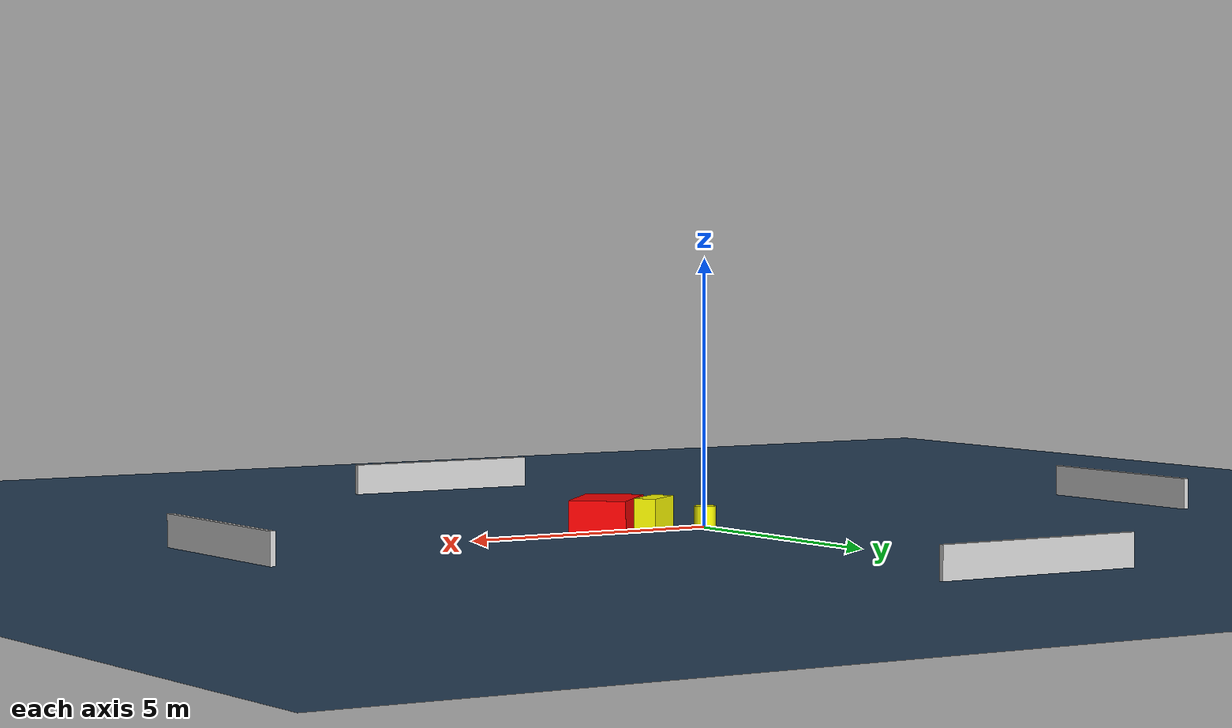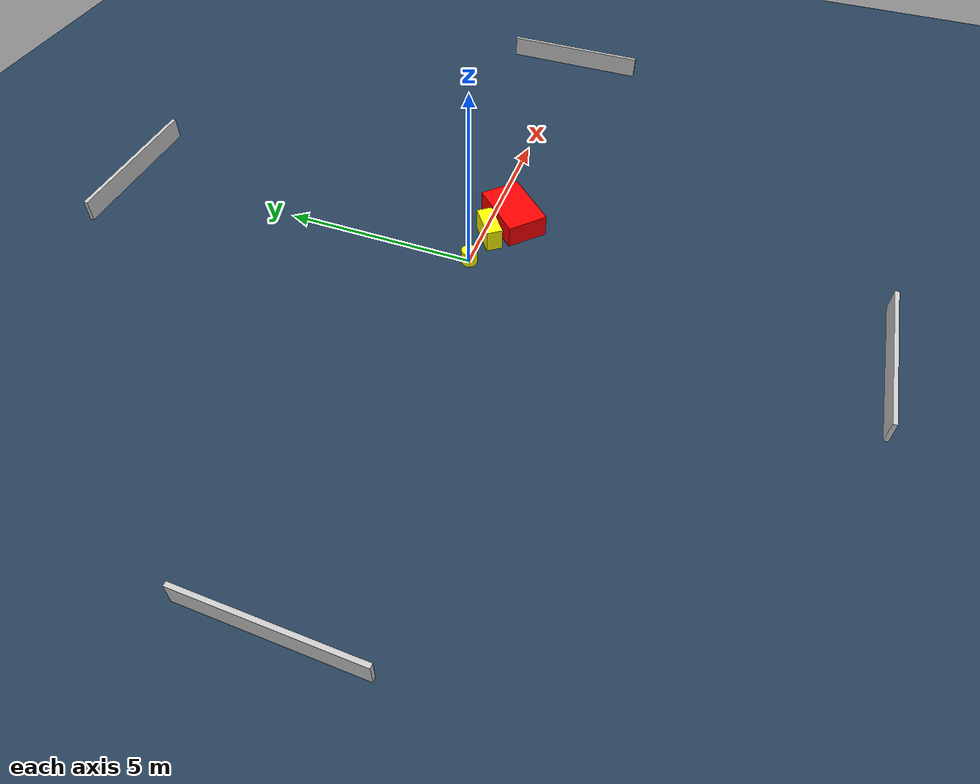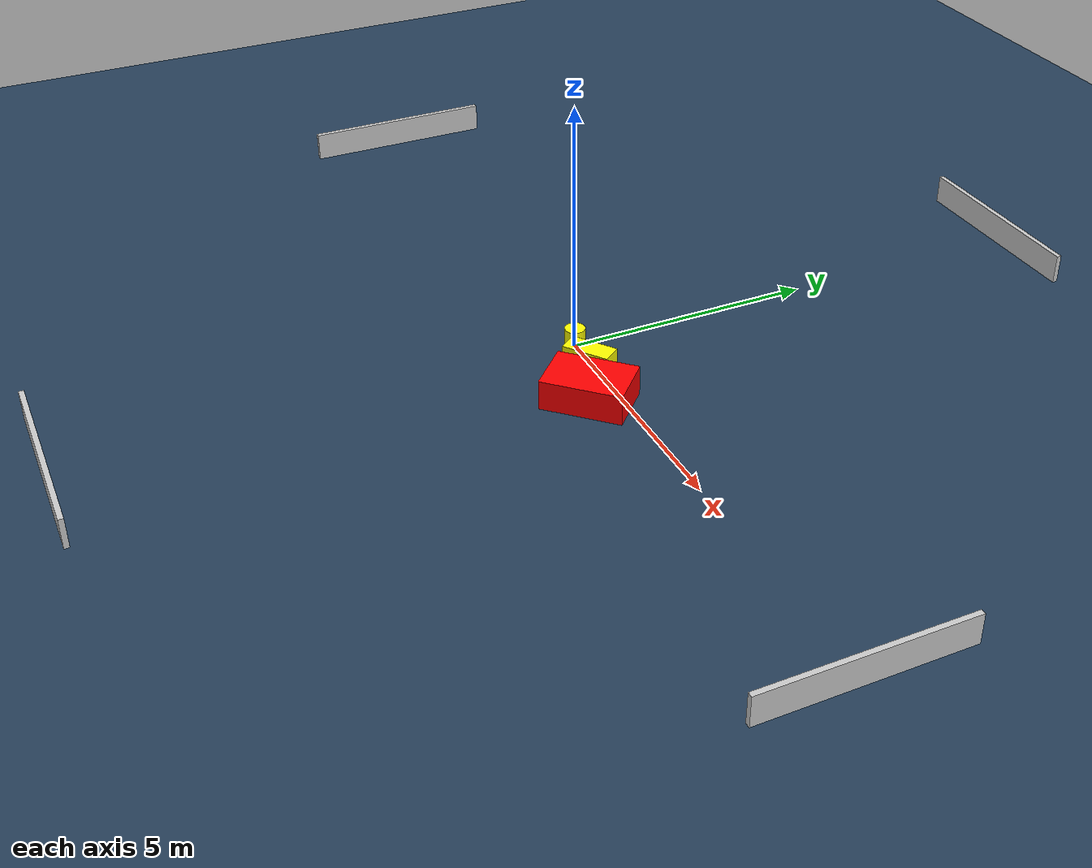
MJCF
<?xml version="1.0" ?>
<mujoco model="generated_environment">
  <option timestep="0.01" integrator="RK4" cone="elliptic"/>
  <default>
    <geom density="1"/>
  </default>
  <asset>
    <texture builtin="gradient" height="3072" name="skybox" rgb1="0.3 0.5 0.7" rgb2="0 0 0" type="skybox" width="512"/>
    <texture builtin="checker" height="300" name="groundplane" rgb1="0.2 0.3 0.4" rgb2="0.1 0.2 0.3" type="2d" width="300"/>
    <material name="groundplane" reflectance="0.2" texrepeat="5 5" texture="groundplane"/>
  </asset>
  <worldbody>
    <light dir="0 0 -1" directional="true" pos="0 0 1.5"/>
    <geom condim="3" friction="0.5 0.005 0.001" material="groundplane" name="floor" pos="0 0 0" size="0 0 0.05" type="plane"/>
    <body name="walls">
      <geom name="wall_1" condim="4" pos="-10.0 0.0 0.3" rgba="0.800000011920929 0.800000011920929 0.800000011920929 1.0" size="0.05 2.0 0.3" type="box"/>
      <geom name="wall_2" condim="4" pos="10.0 0.0 0.3" rgba="0.800000011920929 0.800000011920929 0.800000011920929 1.0" size="0.05 2.0 0.3" type="box"/>
      <geom name="wall_3" condim="4" pos="0.0 -10.0 0.3" rgba="0.800000011920929 0.800000011920929 0.800000011920929 1.0" size="2.0 0.05 0.3" type="box"/>
      <geom name="wall_4" condim="4" pos="0.0 10.0 0.3" rgba="0.800000011920929 0.800000011920929 0.800000011920929 1.0" size="2.0 0.05 0.3" type="box"/>
    </body>
    <body name="robot">
      <joint name="joint_x" type="slide" pos="0 0 0" axis="1 0 0"/>
      <joint name="joint_y" type="slide" pos="0 0 0" axis="0 1 0"/>
      <geom name="robot" type="cylinder" pos="0.0 0.0 0.2" size="0.2 0.2 0.0" mass="5.0" friction="1.0 0.005 0.0001" condim="4" rgba="1.0 1.0 0.0 1.0"/>
    </body>
    <body name="obstacle_1_movable">
      <geom name="obstacle_1_movable" condim="4" pos="1.0224149255085933 -0.17537916106712073 0.3" euler="0 0 36.32707662305192" friction="0.0 0.005 0.001" rgba="1.0 1.0 0.0 1.0" size="0.46923167845782127 0.20520789132104045 0.3" type="box" mass="0.1"/>
      <joint type="free"/>
    </body>
    <body name="obstacle_2_static">
      <geom name="obstacle_2_static" condim="4" pos="1.8206109241681234 -0.5608043954278643 0.3" euler="0 0 225.9809436502588" friction="0.0 0.005 0.001" rgba="1.0 0.0 0.0 1.0" size="0.7977292584102897 0.5357254077796514 0.3" type="box"/>
    </body>
  </worldbody>
  <actuator>
    <motor name="actuator_x" joint="joint_x" gear="1" ctrlrange="-1 1"/>
    <motor name="actuator_y" joint="joint_y" gear="1" ctrlrange="-1 1"/>
  </actuator>
</mujoco>
